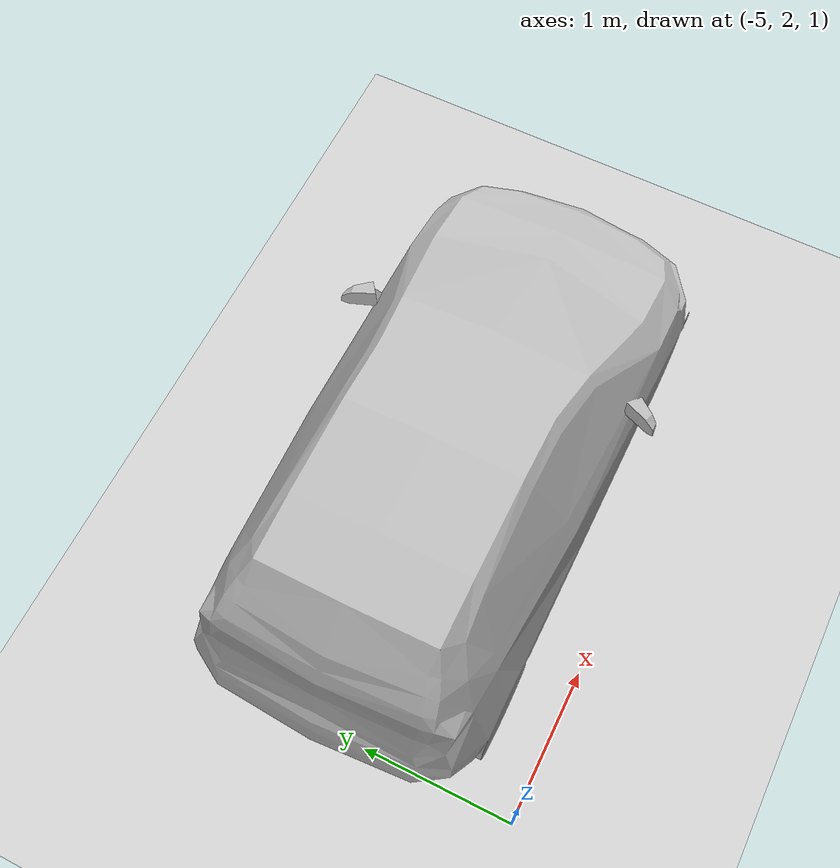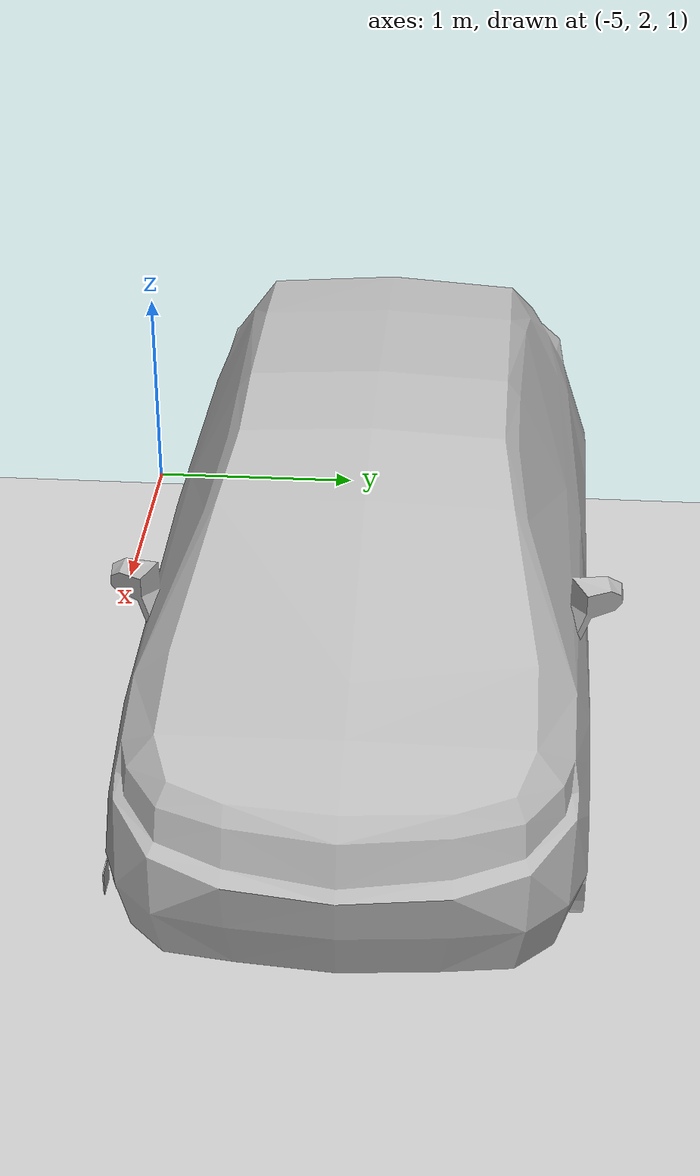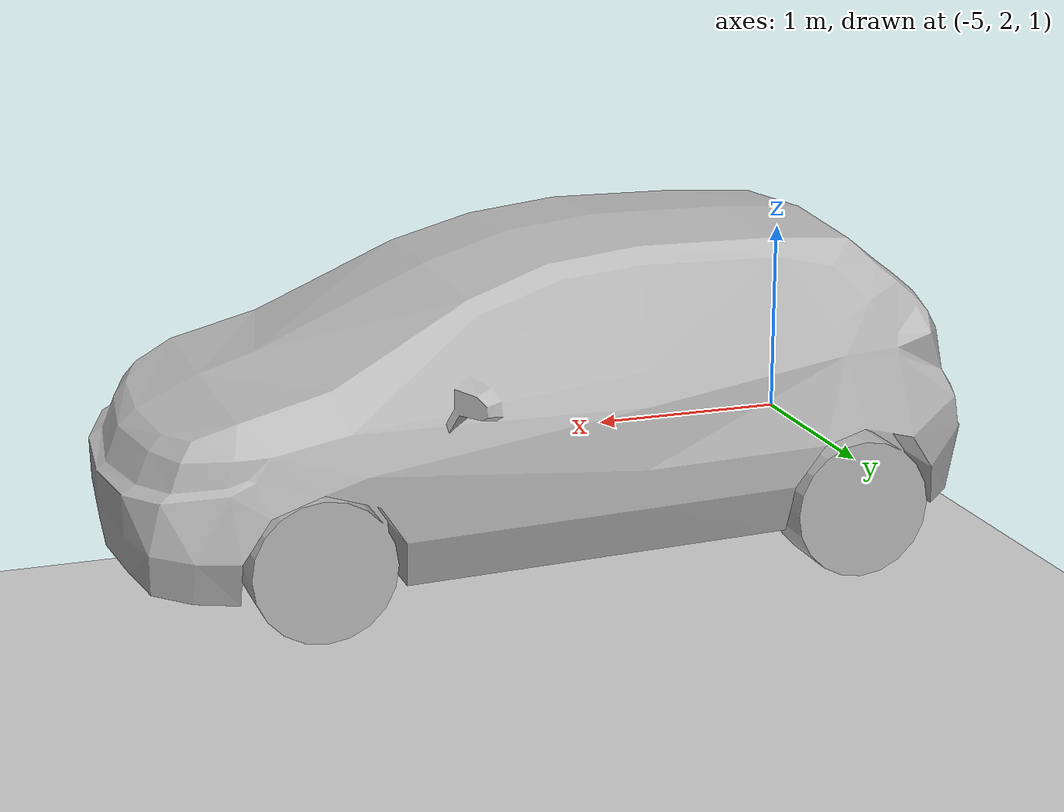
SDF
<sdf version="1.6">
 <world name="default">
  <light name="sun" type="directional">
   <pose>0 0 10 0 -0 0</pose>
   <diffuse>0.8 0.8 0.8 1</diffuse>
   <specular>0.2 0.2 0.2 1</specular>
   <attenuation>
    <range>1000</range>
    <constant>0.9</constant>
    <linear>0.01</linear>
    <quadratic>0.001</quadratic>
   </attenuation>
   <direction>-0.5 0.1 -0.9</direction>
  </light>
  <model name="ground_plane">
   <static>1</static>
   <link name="link">
    <collision name="collision">
     <geometry><plane><normal>0 0 1</normal><size>100 100</size></plane></geometry>
     <surface>
      <contact><collide_bitmask>65535</collide_bitmask></contact>
      <friction><ode><mu>100</mu><mu2>50</mu2></ode></friction>
     </surface>
    </collision>
    <visual name="visual">
     <cast_shadows>0</cast_shadows>
     <geometry><plane><normal>0 0 1</normal><size>100 100</size></plane></geometry>
     <material>
      <script><uri>file://media/materials/scripts/gazebo.material</uri><name>Gazebo/Grey</name></script>
     </material>
    </visual>
   </link>
  </model>
  <gravity>0 0 -9.8</gravity>
  <magnetic_field>6e-06 2.3e-05 -4.2e-05</magnetic_field>
  <atmosphere type="adiabatic"/>
  <physics name="default_physics" default="0" type="ode">
   <max_step_size>0.001</max_step_size>
   <real_time_factor>1</real_time_factor>
   <real_time_update_rate>1000</real_time_update_rate>
  </physics>
  <scene><ambient>0.4 0.4 0.4 1</ambient><background>0.7 0.7 0.7 1</background><shadows>1</shadows></scene>
  <audio><device>default</device></audio>
  <spherical_coordinates>
   <surface_model>EARTH_WGS84</surface_model>
   <latitude_deg>0</latitude_deg>
   <longitude_deg>0</longitude_deg>
   <elevation>0</elevation>
   <heading_deg>0</heading_deg>
  </spherical_coordinates>
  <model name="toyota_aruco100">
   <model name="aruco_marker">
    <static>1</static>
    <link name="link">
     <inertial>
      <pose>2.813630 2.729950 1.050562 0 0 -1.5707963</pose>
      <mass>0.001</mass>
      <inertia>
       <ixx>3.75e-06</ixx>
       <ixy>0</ixy>
       <ixz>0</ixz>
       <iyy>1.875e-06</iyy>
       <iyz>0</iyz>
       <izz>1.875e-06</izz>
      </inertia>
     </inertial>
     <visual name="front_visual">
      <pose>5e-05 0 0 0 -0 0</pose>
      <geometry><box><size>0.1 0.005 0.1</size></box></geometry>
      <material>
       <script>
        <uri>model://aruco_marker/materials/scripts</uri>
        <uri>model://aruco_marker/materials/textures</uri>
        <name>Marker</name>
       </script>
      </material>
     </visual>
     <visual name="rear_visual">
      <pose>-5e-05 0 0 0 -0 0</pose>
      <geometry><box><size>0.1 0.0015 0.1</size></box></geometry>
     </visual>
     <collision name="collision"><geometry><box><size>0.05 0.05 0.05</size></box></geometry></collision>
    </link>
    <pose>0.992046 -0.463762 0.170038 0 -0 0</pose>
   </model>
   <model name="hatchback">
    <static>1</static>
    <link name="link">
     <collision name="collision">
      <pose>0 0 0 0 -0 1.5708</pose>
      <geometry>
       <mesh><scale>0.0254 0.0254 0.0254</scale><uri>model://hatchback/meshes/hatchback.obj</uri></mesh>
      </geometry>
     </collision>
     <visual name="visual">
      <pose>0 0 0 0 -0 1.5708</pose>
      <geometry>
       <mesh><scale>0.0254 0.0254 0.0254</scale><uri>model://hatchback/meshes/hatchback.obj</uri></mesh>
      </geometry>
     </visual>
    </link>
    <pose>-0.992046 0.463762 -0.170039 0 -0 0</pose>
   </model>
   <static>1</static>
   <pose>-2.47968 2.78984 1.05056 0 -0 0</pose>
  </model>
 </world>
</sdf>
